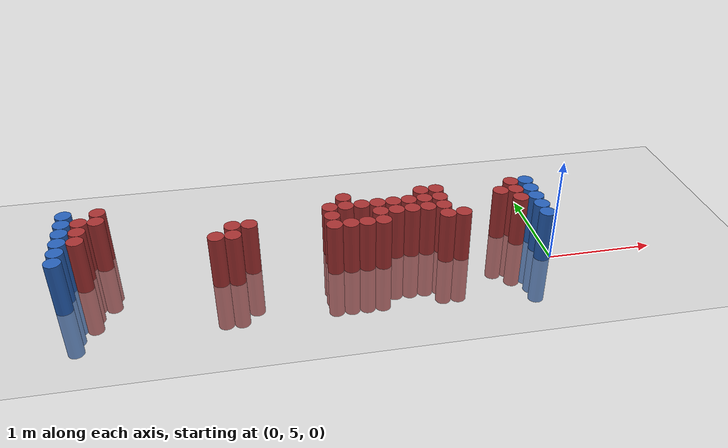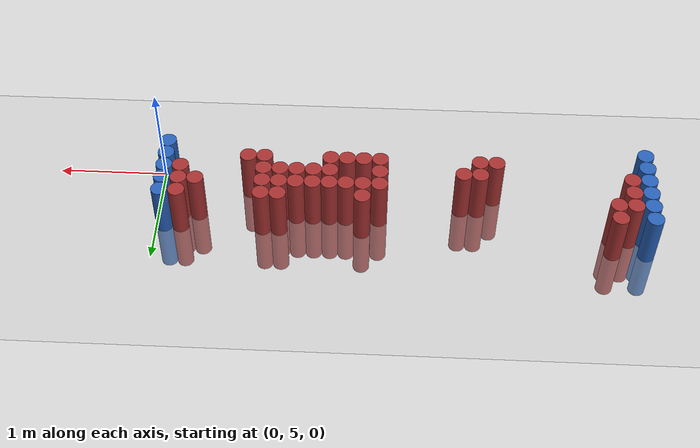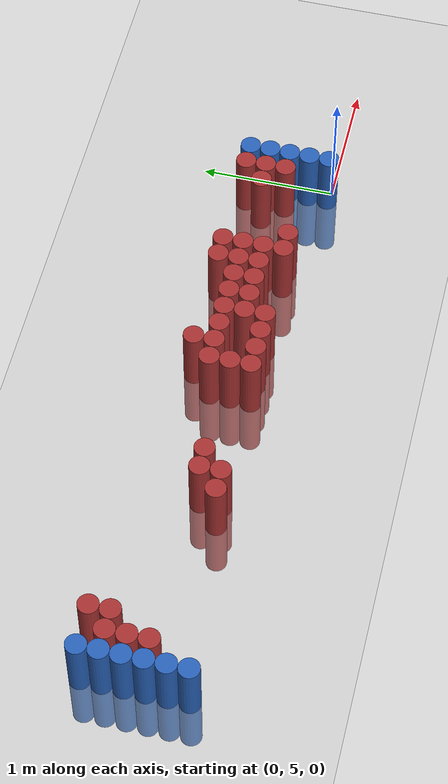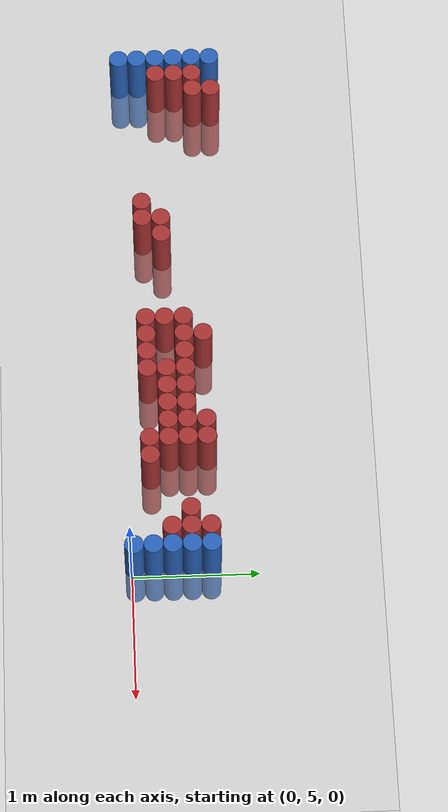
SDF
<sdf version="1.6">
 <world name="default">
  <model name="ground_plane">
   <static>1</static>
   <link name="link">
    <collision name="collision">
     <geometry><plane><normal>0 0 1</normal><size>100 100</size></plane></geometry>
     <surface><friction><ode><mu>100</mu><mu2>50</mu2></ode></friction></surface>
    </collision>
    <visual name="visual">
     <cast_shadows>0</cast_shadows>
     <geometry><plane><normal>0 0 1</normal><size>100 100</size></plane></geometry>
     <material>
      <script><uri>file://media/materials/scripts/gazebo.material</uri><name>Gazebo/Grey</name></script>
     </material>
    </visual>
   </link>
  </model>
  <model name="unit_cylinder_94">
   <static>1</static>
   <pose>-0.075000 5.025000 0.000000 0.000000 0.000000 0.000000</pose>
   <link name="link">
    <inertial>
     <mass>1</mass>
     <inertia><ixx>0.145833</ixx><ixy>0</ixy><ixz>0</ixz><iyy>0.145833</iyy><iyz>0</iyz><izz>0.125</izz></inertia>
    </inertial>
    <collision name="collision">
     <geometry><cylinder><radius>0.075000</radius><length>1</length></cylinder></geometry>
    </collision>
    <visual name="visual">
     <geometry><cylinder><radius>0.075000</radius><length>1</length></cylinder></geometry>
     <material>
      <ambient>0.152000 0.379000 0.720000 1</ambient>
      <diffuse>0.152000 0.379000 0.720000 1</diffuse>
     </material>
     <material>
      <script><name>Gazebo/Grey</name><uri>file://media/materials/scripts/gazebo.material</uri></script>
     </material>
    </visual>
   </link>
  </model>
  <model name="unit_cylinder_95">
   <static>1</static>
   <pose>-4.425000 5.025000 0.000000 0.000000 0.000000 0.000000</pose>
   <link name="link">
    <inertial>
     <mass>1</mass>
     <inertia><ixx>0.145833</ixx><ixy>0</ixy><ixz>0</ixz><iyy>0.145833</iyy><iyz>0</iyz><izz>0.125</izz></inertia>
    </inertial>
    <collision name="collision">
     <geometry><cylinder><radius>0.075000</radius><length>1</length></cylinder></geometry>
    </collision>
    <visual name="visual">
     <geometry><cylinder><radius>0.075000</radius><length>1</length></cylinder></geometry>
     <material>
      <ambient>0.152000 0.379000 0.720000 1</ambient>
      <diffuse>0.152000 0.379000 0.720000 1</diffuse>
     </material>
     <material>
      <script><name>Gazebo/Grey</name><uri>file://media/materials/scripts/gazebo.material</uri></script>
     </material>
    </visual>
   </link>
  </model>
  <model name="unit_cylinder_96">
   <static>1</static>
   <pose>-4.425000 5.175000 0.000000 0.000000 0.000000 0.000000</pose>
   <link name="link">
    <inertial>
     <mass>1</mass>
     <inertia><ixx>0.145833</ixx><ixy>0</ixy><ixz>0</ixz><iyy>0.145833</iyy><iyz>0</iyz><izz>0.125</izz></inertia>
    </inertial>
    <collision name="collision">
     <geometry><cylinder><radius>0.075000</radius><length>1</length></cylinder></geometry>
    </collision>
    <visual name="visual">
     <geometry><cylinder><radius>0.075000</radius><length>1</length></cylinder></geometry>
     <material>
      <ambient>0.152000 0.379000 0.720000 1</ambient>
      <diffuse>0.152000 0.379000 0.720000 1</diffuse>
     </material>
     <material>
      <script><name>Gazebo/Grey</name><uri>file://media/materials/scripts/gazebo.material</uri></script>
     </material>
    </visual>
   </link>
  </model>
  <model name="unit_cylinder_97">
   <static>1</static>
   <pose>-4.425000 5.325000 0.000000 0.000000 0.000000 0.000000</pose>
   <link name="link">
    <inertial>
     <mass>1</mass>
     <inertia><ixx>0.145833</ixx><ixy>0</ixy><ixz>0</ixz><iyy>0.145833</iyy><iyz>0</iyz><izz>0.125</izz></inertia>
    </inertial>
    <collision name="collision">
     <geometry><cylinder><radius>0.075000</radius><length>1</length></cylinder></geometry>
    </collision>
    <visual name="visual">
     <geometry><cylinder><radius>0.075000</radius><length>1</length></cylinder></geometry>
     <material>
      <ambient>0.152000 0.379000 0.720000 1</ambient>
      <diffuse>0.152000 0.379000 0.720000 1</diffuse>
     </material>
     <material>
      <script><name>Gazebo/Grey</name><uri>file://media/materials/scripts/gazebo.material</uri></script>
     </material>
    </visual>
   </link>
  </model>
  <model name="unit_cylinder_98">
   <static>1</static>
   <pose>-4.425000 5.475000 0.000000 0.000000 0.000000 0.000000</pose>
   <link name="link">
    <inertial>
     <mass>1</mass>
     <inertia><ixx>0.145833</ixx><ixy>0</ixy><ixz>0</ixz><iyy>0.145833</iyy><iyz>0</iyz><izz>0.125</izz></inertia>
    </inertial>
    <collision name="collision">
     <geometry><cylinder><radius>0.075000</radius><length>1</length></cylinder></geometry>
    </collision>
    <visual name="visual">
     <geometry><cylinder><radius>0.075000</radius><length>1</length></cylinder></geometry>
     <material>
      <ambient>0.152000 0.379000 0.720000 1</ambient>
      <diffuse>0.152000 0.379000 0.720000 1</diffuse>
     </material>
     <material>
      <script><name>Gazebo/Grey</name><uri>file://media/materials/scripts/gazebo.material</uri></script>
     </material>
    </visual>
   </link>
  </model>
  <model name="unit_cylinder_99">
   <static>1</static>
   <pose>-4.425000 5.625000 0.000000 0.000000 0.000000 0.000000</pose>
   <link name="link">
    <inertial>
     <mass>1</mass>
     <inertia><ixx>0.145833</ixx><ixy>0</ixy><ixz>0</ixz><iyy>0.145833</iyy><iyz>0</iyz><izz>0.125</izz></inertia>
    </inertial>
    <collision name="collision">
     <geometry><cylinder><radius>0.075000</radius><length>1</length></cylinder></geometry>
    </collision>
    <visual name="visual">
     <geometry><cylinder><radius>0.075000</radius><length>1</length></cylinder></geometry>
     <material>
      <ambient>0.152000 0.379000 0.720000 1</ambient>
      <diffuse>0.152000 0.379000 0.720000 1</diffuse>
     </material>
     <material>
      <script><name>Gazebo/Grey</name><uri>file://media/materials/scripts/gazebo.material</uri></script>
     </material>
    </visual>
   </link>
  </model>
  <model name="unit_cylinder_100">
   <static>1</static>
   <pose>-4.425000 5.775000 0.000000 0.000000 0.000000 0.000000</pose>
   <link name="link">
    <inertial>
     <mass>1</mass>
     <inertia><ixx>0.145833</ixx><ixy>0</ixy><ixz>0</ixz><iyy>0.145833</iyy><iyz>0</iyz><izz>0.125</izz></inertia>
    </inertial>
    <collision name="collision">
     <geometry><cylinder><radius>0.075000</radius><length>1</length></cylinder></geometry>
    </collision>
    <visual name="visual">
     <geometry><cylinder><radius>0.075000</radius><length>1</length></cylinder></geometry>
     <material>
      <ambient>0.152000 0.379000 0.720000 1</ambient>
      <diffuse>0.152000 0.379000 0.720000 1</diffuse>
     </material>
     <material>
      <script><name>Gazebo/Grey</name><uri>file://media/materials/scripts/gazebo.material</uri></script>
     </material>
    </visual>
   </link>
  </model>
  <model name="unit_cylinder_126">
   <static>1</static>
   <pose>-4.275000 5.325000 0.000000 0.000000 0.000000 0.000000</pose>
   <link name="link">
    <inertial>
     <mass>1</mass>
     <inertia><ixx>0.145833</ixx><ixy>0</ixy><ixz>0</ixz><iyy>0.145833</iyy><iyz>0</iyz><izz>0.125</izz></inertia>
    </inertial>
    <collision name="collision">
     <geometry><cylinder><radius>0.075000</radius><length>1</length></cylinder></geometry>
    </collision>
    <visual name="visual">
     <geometry><cylinder><radius>0.075000</radius><length>1</length></cylinder></geometry>
     <material>
      <ambient>0.648000 0.192000 0.192000 1</ambient>
      <diffuse>0.648000 0.192000 0.192000 1</diffuse>
     </material>
     <material>
      <script><name>Gazebo/Grey</name><uri>file://media/materials/scripts/gazebo.material</uri></script>
     </material>
    </visual>
   </link>
  </model>
  <model name="unit_cylinder_127">
   <static>1</static>
   <pose>-4.275000 5.475000 0.000000 0.000000 0.000000 0.000000</pose>
   <link name="link">
    <inertial>
     <mass>1</mass>
     <inertia><ixx>0.145833</ixx><ixy>0</ixy><ixz>0</ixz><iyy>0.145833</iyy><iyz>0</iyz><izz>0.125</izz></inertia>
    </inertial>
    <collision name="collision">
     <geometry><cylinder><radius>0.075000</radius><length>1</length></cylinder></geometry>
    </collision>
    <visual name="visual">
     <geometry><cylinder><radius>0.075000</radius><length>1</length></cylinder></geometry>
     <material>
      <ambient>0.648000 0.192000 0.192000 1</ambient>
      <diffuse>0.648000 0.192000 0.192000 1</diffuse>
     </material>
     <material>
      <script><name>Gazebo/Grey</name><uri>file://media/materials/scripts/gazebo.material</uri></script>
     </material>
    </visual>
   </link>
  </model>
  <model name="unit_cylinder_128">
   <static>1</static>
   <pose>-4.275000 5.625000 0.000000 0.000000 0.000000 0.000000</pose>
   <link name="link">
    <inertial>
     <mass>1</mass>
     <inertia><ixx>0.145833</ixx><ixy>0</ixy><ixz>0</ixz><iyy>0.145833</iyy><iyz>0</iyz><izz>0.125</izz></inertia>
    </inertial>
    <collision name="collision">
     <geometry><cylinder><radius>0.075000</radius><length>1</length></cylinder></geometry>
    </collision>
    <visual name="visual">
     <geometry><cylinder><radius>0.075000</radius><length>1</length></cylinder></geometry>
     <material>
      <ambient>0.648000 0.192000 0.192000 1</ambient>
      <diffuse>0.648000 0.192000 0.192000 1</diffuse>
     </material>
     <material>
      <script><name>Gazebo/Grey</name><uri>file://media/materials/scripts/gazebo.material</uri></script>
     </material>
    </visual>
   </link>
  </model>
  <model name="unit_cylinder_146">
   <static>1</static>
   <pose>-4.125000 5.625000 0.000000 0.000000 0.000000 0.000000</pose>
   <link name="link">
    <inertial>
     <mass>1</mass>
     <inertia><ixx>0.145833</ixx><ixy>0</ixy><ixz>0</ixz><iyy>0.145833</iyy><iyz>0</iyz><izz>0.125</izz></inertia>
    </inertial>
    <collision name="collision">
     <geometry><cylinder><radius>0.075000</radius><length>1</length></cylinder></geometry>
    </collision>
    <visual name="visual">
     <geometry><cylinder><radius>0.075000</radius><length>1</length></cylinder></geometry>
     <material>
      <ambient>0.648000 0.192000 0.192000 1</ambient>
      <diffuse>0.648000 0.192000 0.192000 1</diffuse>
     </material>
     <material>
      <script><name>Gazebo/Grey</name><uri>file://media/materials/scripts/gazebo.material</uri></script>
     </material>
    </visual>
   </link>
  </model>
  <model name="unit_cylinder_147">
   <static>1</static>
   <pose>-4.125000 5.775000 0.000000 0.000000 0.000000 0.000000</pose>
   <link name="link">
    <inertial>
     <mass>1</mass>
     <inertia><ixx>0.145833</ixx><ixy>0</ixy><ixz>0</ixz><iyy>0.145833</iyy><iyz>0</iyz><izz>0.125</izz></inertia>
    </inertial>
    <collision name="collision">
     <geometry><cylinder><radius>0.075000</radius><length>1</length></cylinder></geometry>
    </collision>
    <visual name="visual">
     <geometry><cylinder><radius>0.075000</radius><length>1</length></cylinder></geometry>
     <material>
      <ambient>0.648000 0.192000 0.192000 1</ambient>
      <diffuse>0.648000 0.192000 0.192000 1</diffuse>
     </material>
     <material>
      <script><name>Gazebo/Grey</name><uri>file://media/materials/scripts/gazebo.material</uri></script>
     </material>
    </visual>
   </link>
  </model>
  <model name="unit_cylinder_166">
   <static>1</static>
   <pose>-3.075000 5.175000 0.000000 0.000000 0.000000 0.000000</pose>
   <link name="link">
    <inertial>
     <mass>1</mass>
     <inertia><ixx>0.145833</ixx><ixy>0</ixy><ixz>0</ixz><iyy>0.145833</iyy><iyz>0</iyz><izz>0.125</izz></inertia>
    </inertial>
    <collision name="collision">
     <geometry><cylinder><radius>0.075000</radius><length>1</length></cylinder></geometry>
    </collision>
    <visual name="visual">
     <geometry><cylinder><radius>0.075000</radius><length>1</length></cylinder></geometry>
     <material>
      <ambient>0.648000 0.192000 0.192000 1</ambient>
      <diffuse>0.648000 0.192000 0.192000 1</diffuse>
     </material>
     <material>
      <script><name>Gazebo/Grey</name><uri>file://media/materials/scripts/gazebo.material</uri></script>
     </material>
    </visual>
   </link>
  </model>
  <model name="unit_cylinder_167">
   <static>1</static>
   <pose>-2.925000 5.175000 0.000000 0.000000 0.000000 0.000000</pose>
   <link name="link">
    <inertial>
     <mass>1</mass>
     <inertia><ixx>0.145833</ixx><ixy>0</ixy><ixz>0</ixz><iyy>0.145833</iyy><iyz>0</iyz><izz>0.125</izz></inertia>
    </inertial>
    <collision name="collision">
     <geometry><cylinder><radius>0.075000</radius><length>1</length></cylinder></geometry>
    </collision>
    <visual name="visual">
     <geometry><cylinder><radius>0.075000</radius><length>1</length></cylinder></geometry>
     <material>
      <ambient>0.648000 0.192000 0.192000 1</ambient>
      <diffuse>0.648000 0.192000 0.192000 1</diffuse>
     </material>
     <material>
      <script><name>Gazebo/Grey</name><uri>file://media/materials/scripts/gazebo.material</uri></script>
     </material>
    </visual>
   </link>
  </model>
  <model name="unit_cylinder_168">
   <static>1</static>
   <pose>-2.925000 5.325000 0.000000 0.000000 0.000000 0.000000</pose>
   <link name="link">
    <inertial>
     <mass>1</mass>
     <inertia><ixx>0.145833</ixx><ixy>0</ixy><ixz>0</ixz><iyy>0.145833</iyy><iyz>0</iyz><izz>0.125</izz></inertia>
    </inertial>
    <collision name="collision">
     <geometry><cylinder><radius>0.075000</radius><length>1</length></cylinder></geometry>
    </collision>
    <visual name="visual">
     <geometry><cylinder><radius>0.075000</radius><length>1</length></cylinder></geometry>
     <material>
      <ambient>0.648000 0.192000 0.192000 1</ambient>
      <diffuse>0.648000 0.192000 0.192000 1</diffuse>
     </material>
     <material>
      <script><name>Gazebo/Grey</name><uri>file://media/materials/scripts/gazebo.material</uri></script>
     </material>
    </visual>
   </link>
  </model>
  <model name="unit_cylinder_170">
   <static>1</static>
   <pose>-2.775000 5.325000 0.000000 0.000000 0.000000 0.000000</pose>
   <link name="link">
    <inertial>
     <mass>1</mass>
     <inertia><ixx>0.145833</ixx><ixy>0</ixy><ixz>0</ixz><iyy>0.145833</iyy><iyz>0</iyz><izz>0.125</izz></inertia>
    </inertial>
    <collision name="collision">
     <geometry><cylinder><radius>0.075000</radius><length>1</length></cylinder></geometry>
    </collision>
    <visual name="visual">
     <geometry><cylinder><radius>0.075000</radius><length>1</length></cylinder></geometry>
     <material>
      <ambient>0.648000 0.192000 0.192000 1</ambient>
      <diffuse>0.648000 0.192000 0.192000 1</diffuse>
     </material>
     <material>
      <script><name>Gazebo/Grey</name><uri>file://media/materials/scripts/gazebo.material</uri></script>
     </material>
    </visual>
   </link>
  </model>
  <model name="unit_cylinder_183">
   <static>1</static>
   <pose>-2.025000 5.175000 0.000000 0.000000 0.000000 0.000000</pose>
   <link name="link">
    <inertial>
     <mass>1</mass>
     <inertia><ixx>0.145833</ixx><ixy>0</ixy><ixz>0</ixz><iyy>0.145833</iyy><iyz>0</iyz><izz>0.125</izz></inertia>
    </inertial>
    <collision name="collision">
     <geometry><cylinder><radius>0.075000</radius><length>1</length></cylinder></geometry>
    </collision>
    <visual name="visual">
     <geometry><cylinder><radius>0.075000</radius><length>1</length></cylinder></geometry>
     <material>
      <ambient>0.648000 0.192000 0.192000 1</ambient>
      <diffuse>0.648000 0.192000 0.192000 1</diffuse>
     </material>
     <material>
      <script><name>Gazebo/Grey</name><uri>file://media/materials/scripts/gazebo.material</uri></script>
     </material>
    </visual>
   </link>
  </model>
  <model name="unit_cylinder_184">
   <static>1</static>
   <pose>-2.025000 5.325000 0.000000 0.000000 0.000000 0.000000</pose>
   <link name="link">
    <inertial>
     <mass>1</mass>
     <inertia><ixx>0.145833</ixx><ixy>0</ixy><ixz>0</ixz><iyy>0.145833</iyy><iyz>0</iyz><izz>0.125</izz></inertia>
    </inertial>
    <collision name="collision">
     <geometry><cylinder><radius>0.075000</radius><length>1</length></cylinder></geometry>
    </collision>
    <visual name="visual">
     <geometry><cylinder><radius>0.075000</radius><length>1</length></cylinder></geometry>
     <material>
      <ambient>0.648000 0.192000 0.192000 1</ambient>
      <diffuse>0.648000 0.192000 0.192000 1</diffuse>
     </material>
     <material>
      <script><name>Gazebo/Grey</name><uri>file://media/materials/scripts/gazebo.material</uri></script>
     </material>
    </visual>
   </link>
  </model>
  <model name="unit_cylinder_185">
   <static>1</static>
   <pose>-2.025000 5.475000 0.000000 0.000000 0.000000 0.000000</pose>
   <link name="link">
    <inertial>
     <mass>1</mass>
     <inertia><ixx>0.145833</ixx><ixy>0</ixy><ixz>0</ixz><iyy>0.145833</iyy><iyz>0</iyz><izz>0.125</izz></inertia>
    </inertial>
    <collision name="collision">
     <geometry><cylinder><radius>0.075000</radius><length>1</length></cylinder></geometry>
    </collision>
    <visual name="visual">
     <geometry><cylinder><radius>0.075000</radius><length>1</length></cylinder></geometry>
     <material>
      <ambient>0.648000 0.192000 0.192000 1</ambient>
      <diffuse>0.648000 0.192000 0.192000 1</diffuse>
     </material>
     <material>
      <script><name>Gazebo/Grey</name><uri>file://media/materials/scripts/gazebo.material</uri></script>
     </material>
    </visual>
   </link>
  </model>
  <model name="unit_cylinder_186">
   <static>1</static>
   <pose>-1.875000 5.175000 0.000000 0.000000 0.000000 0.000000</pose>
   <link name="link">
    <inertial>
     <mass>1</mass>
     <inertia><ixx>0.145833</ixx><ixy>0</ixy><ixz>0</ixz><iyy>0.145833</iyy><iyz>0</iyz><izz>0.125</izz></inertia>
    </inertial>
    <collision name="collision">
     <geometry><cylinder><radius>0.075000</radius><length>1</length></cylinder></geometry>
    </collision>
    <visual name="visual">
     <geometry><cylinder><radius>0.075000</radius><length>1</length></cylinder></geometry>
     <material>
      <ambient>0.648000 0.192000 0.192000 1</ambient>
      <diffuse>0.648000 0.192000 0.192000 1</diffuse>
     </material>
     <material>
      <script><name>Gazebo/Grey</name><uri>file://media/materials/scripts/gazebo.material</uri></script>
     </material>
    </visual>
   </link>
  </model>
  <model name="unit_cylinder_187">
   <static>1</static>
   <pose>-1.875000 5.475000 0.000000 0.000000 0.000000 0.000000</pose>
   <link name="link">
    <inertial>
     <mass>1</mass>
     <inertia><ixx>0.145833</ixx><ixy>0</ixy><ixz>0</ixz><iyy>0.145833</iyy><iyz>0</iyz><izz>0.125</izz></inertia>
    </inertial>
    <collision name="collision">
     <geometry><cylinder><radius>0.075000</radius><length>1</length></cylinder></geometry>
    </collision>
    <visual name="visual">
     <geometry><cylinder><radius>0.075000</radius><length>1</length></cylinder></geometry>
     <material>
      <ambient>0.648000 0.192000 0.192000 1</ambient>
      <diffuse>0.648000 0.192000 0.192000 1</diffuse>
     </material>
     <material>
      <script><name>Gazebo/Grey</name><uri>file://media/materials/scripts/gazebo.material</uri></script>
     </material>
    </visual>
   </link>
  </model>
  <model name="unit_cylinder_188">
   <static>1</static>
   <pose>-1.875000 5.625000 0.000000 0.000000 0.000000 0.000000</pose>
   <link name="link">
    <inertial>
     <mass>1</mass>
     <inertia><ixx>0.145833</ixx><ixy>0</ixy><ixz>0</ixz><iyy>0.145833</iyy><iyz>0</iyz><izz>0.125</izz></inertia>
    </inertial>
    <collision name="collision">
     <geometry><cylinder><radius>0.075000</radius><length>1</length></cylinder></geometry>
    </collision>
    <visual name="visual">
     <geometry><cylinder><radius>0.075000</radius><length>1</length></cylinder></geometry>
     <material>
      <ambient>0.648000 0.192000 0.192000 1</ambient>
      <diffuse>0.648000 0.192000 0.192000 1</diffuse>
     </material>
     <material>
      <script><name>Gazebo/Grey</name><uri>file://media/materials/scripts/gazebo.material</uri></script>
     </material>
    </visual>
   </link>
  </model>
  <model name="unit_cylinder_193">
   <static>1</static>
   <pose>-1.725000 5.175000 0.000000 0.000000 0.000000 0.000000</pose>
   <link name="link">
    <inertial>
     <mass>1</mass>
     <inertia><ixx>0.145833</ixx><ixy>0</ixy><ixz>0</ixz><iyy>0.145833</iyy><iyz>0</iyz><izz>0.125</izz></inertia>
    </inertial>
    <collision name="collision">
     <geometry><cylinder><radius>0.075000</radius><length>1</length></cylinder></geometry>
    </collision>
    <visual name="visual">
     <geometry><cylinder><radius>0.075000</radius><length>1</length></cylinder></geometry>
     <material>
      <ambient>0.648000 0.192000 0.192000 1</ambient>
      <diffuse>0.648000 0.192000 0.192000 1</diffuse>
     </material>
     <material>
      <script><name>Gazebo/Grey</name><uri>file://media/materials/scripts/gazebo.material</uri></script>
     </material>
    </visual>
   </link>
  </model>
  <model name="unit_cylinder_194">
   <static>1</static>
   <pose>-1.725000 5.475000 0.000000 0.000000 0.000000 0.000000</pose>
   <link name="link">
    <inertial>
     <mass>1</mass>
     <inertia><ixx>0.145833</ixx><ixy>0</ixy><ixz>0</ixz><iyy>0.145833</iyy><iyz>0</iyz><izz>0.125</izz></inertia>
    </inertial>
    <collision name="collision">
     <geometry><cylinder><radius>0.075000</radius><length>1</length></cylinder></geometry>
    </collision>
    <visual name="visual">
     <geometry><cylinder><radius>0.075000</radius><length>1</length></cylinder></geometry>
     <material>
      <ambient>0.648000 0.192000 0.192000 1</ambient>
      <diffuse>0.648000 0.192000 0.192000 1</diffuse>
     </material>
     <material>
      <script><name>Gazebo/Grey</name><uri>file://media/materials/scripts/gazebo.material</uri></script>
     </material>
    </visual>
   </link>
  </model>
  <model name="unit_cylinder_202">
   <static>1</static>
   <pose>-1.575000 5.175000 0.000000 0.000000 0.000000 0.000000</pose>
   <link name="link">
    <inertial>
     <mass>1</mass>
     <inertia><ixx>0.145833</ixx><ixy>0</ixy><ixz>0</ixz><iyy>0.145833</iyy><iyz>0</iyz><izz>0.125</izz></inertia>
    </inertial>
    <collision name="collision">
     <geometry><cylinder><radius>0.075000</radius><length>1</length></cylinder></geometry>
    </collision>
    <visual name="visual">
     <geometry><cylinder><radius>0.075000</radius><length>1</length></cylinder></geometry>
     <material>
      <ambient>0.648000 0.192000 0.192000 1</ambient>
      <diffuse>0.648000 0.192000 0.192000 1</diffuse>
     </material>
     <material>
      <script><name>Gazebo/Grey</name><uri>file://media/materials/scripts/gazebo.material</uri></script>
     </material>
    </visual>
   </link>
  </model>
  <model name="unit_cylinder_203">
   <static>1</static>
   <pose>-1.575000 5.325000 0.000000 0.000000 0.000000 0.000000</pose>
   <link name="link">
    <inertial>
     <mass>1</mass>
     <inertia><ixx>0.145833</ixx><ixy>0</ixy><ixz>0</ixz><iyy>0.145833</iyy><iyz>0</iyz><izz>0.125</izz></inertia>
    </inertial>
    <collision name="collision">
     <geometry><cylinder><radius>0.075000</radius><length>1</length></cylinder></geometry>
    </collision>
    <visual name="visual">
     <geometry><cylinder><radius>0.075000</radius><length>1</length></cylinder></geometry>
     <material>
      <ambient>0.648000 0.192000 0.192000 1</ambient>
      <diffuse>0.648000 0.192000 0.192000 1</diffuse>
     </material>
     <material>
      <script><name>Gazebo/Grey</name><uri>file://media/materials/scripts/gazebo.material</uri></script>
     </material>
    </visual>
   </link>
  </model>
  <model name="unit_cylinder_204">
   <static>1</static>
   <pose>-1.575000 5.475000 0.000000 0.000000 0.000000 0.000000</pose>
   <link name="link">
    <inertial>
     <mass>1</mass>
     <inertia><ixx>0.145833</ixx><ixy>0</ixy><ixz>0</ixz><iyy>0.145833</iyy><iyz>0</iyz><izz>0.125</izz></inertia>
    </inertial>
    <collision name="collision">
     <geometry><cylinder><radius>0.075000</radius><length>1</length></cylinder></geometry>
    </collision>
    <visual name="visual">
     <geometry><cylinder><radius>0.075000</radius><length>1</length></cylinder></geometry>
     <material>
      <ambient>0.648000 0.192000 0.192000 1</ambient>
      <diffuse>0.648000 0.192000 0.192000 1</diffuse>
     </material>
     <material>
      <script><name>Gazebo/Grey</name><uri>file://media/materials/scripts/gazebo.material</uri></script>
     </material>
    </visual>
   </link>
  </model>
  <model name="unit_cylinder_213">
   <static>1</static>
   <pose>-1.425000 5.325000 0.000000 0.000000 0.000000 0.000000</pose>
   <link name="link">
    <inertial>
     <mass>1</mass>
     <inertia><ixx>0.145833</ixx><ixy>0</ixy><ixz>0</ixz><iyy>0.145833</iyy><iyz>0</iyz><izz>0.125</izz></inertia>
    </inertial>
    <collision name="collision">
     <geometry><cylinder><radius>0.075000</radius><length>1</length></cylinder></geometry>
    </collision>
    <visual name="visual">
     <geometry><cylinder><radius>0.075000</radius><length>1</length></cylinder></geometry>
     <material>
      <ambient>0.648000 0.192000 0.192000 1</ambient>
      <diffuse>0.648000 0.192000 0.192000 1</diffuse>
     </material>
     <material>
      <script><name>Gazebo/Grey</name><uri>file://media/materials/scripts/gazebo.material</uri></script>
     </material>
    </visual>
   </link>
  </model>
  <model name="unit_cylinder_214">
   <static>1</static>
   <pose>-1.425000 5.475000 0.000000 0.000000 0.000000 0.000000</pose>
   <link name="link">
    <inertial>
     <mass>1</mass>
     <inertia><ixx>0.145833</ixx><ixy>0</ixy><ixz>0</ixz><iyy>0.145833</iyy><iyz>0</iyz><izz>0.125</izz></inertia>
    </inertial>
    <collision name="collision">
     <geometry><cylinder><radius>0.075000</radius><length>1</length></cylinder></geometry>
    </collision>
    <visual name="visual">
     <geometry><cylinder><radius>0.075000</radius><length>1</length></cylinder></geometry>
     <material>
      <ambient>0.648000 0.192000 0.192000 1</ambient>
      <diffuse>0.648000 0.192000 0.192000 1</diffuse>
     </material>
     <material>
      <script><name>Gazebo/Grey</name><uri>file://media/materials/scripts/gazebo.material</uri></script>
     </material>
    </visual>
   </link>
  </model>
  <model name="unit_cylinder_222">
   <static>1</static>
   <pose>-1.275000 5.325000 0.000000 0.000000 0.000000 0.000000</pose>
   <link name="link">
    <inertial>
     <mass>1</mass>
     <inertia><ixx>0.145833</ixx><ixy>0</ixy><ixz>0</ixz><iyy>0.145833</iyy><iyz>0</iyz><izz>0.125</izz></inertia>
    </inertial>
    <collision name="collision">
     <geometry><cylinder><radius>0.075000</radius><length>1</length></cylinder></geometry>
    </collision>
    <visual name="visual">
     <geometry><cylinder><radius>0.075000</radius><length>1</length></cylinder></geometry>
     <material>
      <ambient>0.648000 0.192000 0.192000 1</ambient>
      <diffuse>0.648000 0.192000 0.192000 1</diffuse>
     </material>
     <material>
      <script><name>Gazebo/Grey</name><uri>file://media/materials/scripts/gazebo.material</uri></script>
     </material>
    </visual>
   </link>
  </model>
  <model name="unit_cylinder_223">
   <static>1</static>
   <pose>-1.275000 5.475000 0.000000 0.000000 0.000000 0.000000</pose>
   <link name="link">
    <inertial>
     <mass>1</mass>
     <inertia><ixx>0.145833</ixx><ixy>0</ixy><ixz>0</ixz><iyy>0.145833</iyy><iyz>0</iyz><izz>0.125</izz></inertia>
    </inertial>
    <collision name="collision">
     <geometry><cylinder><radius>0.075000</radius><length>1</length></cylinder></geometry>
    </collision>
    <visual name="visual">
     <geometry><cylinder><radius>0.075000</radius><length>1</length></cylinder></geometry>
     <material>
      <ambient>0.648000 0.192000 0.192000 1</ambient>
      <diffuse>0.648000 0.192000 0.192000 1</diffuse>
     </material>
     <material>
      <script><name>Gazebo/Grey</name><uri>file://media/materials/scripts/gazebo.material</uri></script>
     </material>
    </visual>
   </link>
  </model>
  <model name="unit_cylinder_229">
   <static>1</static>
   <pose>-1.125000 5.325000 0.000000 0.000000 0.000000 0.000000</pose>
   <link name="link">
    <inertial>
     <mass>1</mass>
     <inertia><ixx>0.145833</ixx><ixy>0</ixy><ixz>0</ixz><iyy>0.145833</iyy><iyz>0</iyz><izz>0.125</izz></inertia>
    </inertial>
    <collision name="collision">
     <geometry><cylinder><radius>0.075000</radius><length>1</length></cylinder></geometry>
    </collision>
    <visual name="visual">
     <geometry><cylinder><radius>0.075000</radius><length>1</length></cylinder></geometry>
     <material>
      <ambient>0.648000 0.192000 0.192000 1</ambient>
      <diffuse>0.648000 0.192000 0.192000 1</diffuse>
     </material>
     <material>
      <script><name>Gazebo/Grey</name><uri>file://media/materials/scripts/gazebo.material</uri></script>
     </material>
    </visual>
   </link>
  </model>
  <model name="unit_cylinder_230">
   <static>1</static>
   <pose>-1.125000 5.475000 0.000000 0.000000 0.000000 0.000000</pose>
   <link name="link">
    <inertial>
     <mass>1</mass>
     <inertia><ixx>0.145833</ixx><ixy>0</ixy><ixz>0</ixz><iyy>0.145833</iyy><iyz>0</iyz><izz>0.125</izz></inertia>
    </inertial>
    <collision name="collision">
     <geometry><cylinder><radius>0.075000</radius><length>1</length></cylinder></geometry>
    </collision>
    <visual name="visual">
     <geometry><cylinder><radius>0.075000</radius><length>1</length></cylinder></geometry>
     <material>
      <ambient>0.648000 0.192000 0.192000 1</ambient>
      <diffuse>0.648000 0.192000 0.192000 1</diffuse>
     </material>
     <material>
      <script><name>Gazebo/Grey</name><uri>file://media/materials/scripts/gazebo.material</uri></script>
     </material>
    </visual>
   </link>
  </model>
  <model name="unit_cylinder_231">
   <static>1</static>
   <pose>-1.125000 5.625000 0.000000 0.000000 0.000000 0.000000</pose>
   <link name="link">
    <inertial>
     <mass>1</mass>
     <inertia><ixx>0.145833</ixx><ixy>0</ixy><ixz>0</ixz><iyy>0.145833</iyy><iyz>0</iyz><izz>0.125</izz></inertia>
    </inertial>
    <collision name="collision">
     <geometry><cylinder><radius>0.075000</radius><length>1</length></cylinder></geometry>
    </collision>
    <visual name="visual">
     <geometry><cylinder><radius>0.075000</radius><length>1</length></cylinder></geometry>
     <material>
      <ambient>0.648000 0.192000 0.192000 1</ambient>
      <diffuse>0.648000 0.192000 0.192000 1</diffuse>
     </material>
     <material>
      <script><name>Gazebo/Grey</name><uri>file://media/materials/scripts/gazebo.material</uri></script>
     </material>
    </visual>
   </link>
  </model>
  <model name="unit_cylinder_237">
   <static>1</static>
   <pose>-0.975000 5.175000 0.000000 0.000000 0.000000 0.000000</pose>
   <link name="link">
    <inertial>
     <mass>1</mass>
     <inertia><ixx>0.145833</ixx><ixy>0</ixy><ixz>0</ixz><iyy>0.145833</iyy><iyz>0</iyz><izz>0.125</izz></inertia>
    </inertial>
    <collision name="collision">
     <geometry><cylinder><radius>0.075000</radius><length>1</length></cylinder></geometry>
    </collision>
    <visual name="visual">
     <geometry><cylinder><radius>0.075000</radius><length>1</length></cylinder></geometry>
     <material>
      <ambient>0.648000 0.192000 0.192000 1</ambient>
      <diffuse>0.648000 0.192000 0.192000 1</diffuse>
     </material>
     <material>
      <script><name>Gazebo/Grey</name><uri>file://media/materials/scripts/gazebo.material</uri></script>
     </material>
    </visual>
   </link>
  </model>
  <model name="unit_cylinder_238">
   <static>1</static>
   <pose>-0.975000 5.325000 0.000000 0.000000 0.000000 0.000000</pose>
   <link name="link">
    <inertial>
     <mass>1</mass>
     <inertia><ixx>0.145833</ixx><ixy>0</ixy><ixz>0</ixz><iyy>0.145833</iyy><iyz>0</iyz><izz>0.125</izz></inertia>
    </inertial>
    <collision name="collision">
     <geometry><cylinder><radius>0.075000</radius><length>1</length></cylinder></geometry>
    </collision>
    <visual name="visual">
     <geometry><cylinder><radius>0.075000</radius><length>1</length></cylinder></geometry>
     <material>
      <ambient>0.648000 0.192000 0.192000 1</ambient>
      <diffuse>0.648000 0.192000 0.192000 1</diffuse>
     </material>
     <material>
      <script><name>Gazebo/Grey</name><uri>file://media/materials/scripts/gazebo.material</uri></script>
     </material>
    </visual>
   </link>
  </model>
  <model name="unit_cylinder_239">
   <static>1</static>
   <pose>-0.975000 5.475000 0.000000 0.000000 0.000000 0.000000</pose>
   <link name="link">
    <inertial>
     <mass>1</mass>
     <inertia><ixx>0.145833</ixx><ixy>0</ixy><ixz>0</ixz><iyy>0.145833</iyy><iyz>0</iyz><izz>0.125</izz></inertia>
    </inertial>
    <collision name="collision">
     <geometry><cylinder><radius>0.075000</radius><length>1</length></cylinder></geometry>
    </collision>
    <visual name="visual">
     <geometry><cylinder><radius>0.075000</radius><length>1</length></cylinder></geometry>
     <material>
      <ambient>0.648000 0.192000 0.192000 1</ambient>
      <diffuse>0.648000 0.192000 0.192000 1</diffuse>
     </material>
     <material>
      <script><name>Gazebo/Grey</name><uri>file://media/materials/scripts/gazebo.material</uri></script>
     </material>
    </visual>
   </link>
  </model>
  <model name="unit_cylinder_240">
   <static>1</static>
   <pose>-0.975000 5.625000 0.000000 0.000000 0.000000 0.000000</pose>
   <link name="link">
    <inertial>
     <mass>1</mass>
     <inertia><ixx>0.145833</ixx><ixy>0</ixy><ixz>0</ixz><iyy>0.145833</iyy><iyz>0</iyz><izz>0.125</izz></inertia>
    </inertial>
    <collision name="collision">
     <geometry><cylinder><radius>0.075000</radius><length>1</length></cylinder></geometry>
    </collision>
    <visual name="visual">
     <geometry><cylinder><radius>0.075000</radius><length>1</length></cylinder></geometry>
     <material>
      <ambient>0.648000 0.192000 0.192000 1</ambient>
      <diffuse>0.648000 0.192000 0.192000 1</diffuse>
     </material>
     <material>
      <script><name>Gazebo/Grey</name><uri>file://media/materials/scripts/gazebo.material</uri></script>
     </material>
    </visual>
   </link>
  </model>
  <model name="unit_cylinder_247">
   <static>1</static>
   <pose>-0.825000 5.175000 0.000000 0.000000 0.000000 0.000000</pose>
   <link name="link">
    <inertial>
     <mass>1</mass>
     <inertia><ixx>0.145833</ixx><ixy>0</ixy><ixz>0</ixz><iyy>0.145833</iyy><iyz>0</iyz><izz>0.125</izz></inertia>
    </inertial>
    <collision name="collision">
     <geometry><cylinder><radius>0.075000</radius><length>1</length></cylinder></geometry>
    </collision>
    <visual name="visual">
     <geometry><cylinder><radius>0.075000</radius><length>1</length></cylinder></geometry>
     <material>
      <ambient>0.648000 0.192000 0.192000 1</ambient>
      <diffuse>0.648000 0.192000 0.192000 1</diffuse>
     </material>
     <material>
      <script><name>Gazebo/Grey</name><uri>file://media/materials/scripts/gazebo.material</uri></script>
     </material>
    </visual>
   </link>
  </model>
  <model name="unit_cylinder_277">
   <static>1</static>
   <pose>-0.375000 5.475000 0.000000 0.000000 0.000000 0.000000</pose>
   <link name="link">
    <inertial>
     <mass>1</mass>
     <inertia><ixx>0.145833</ixx><ixy>0</ixy><ixz>0</ixz><iyy>0.145833</iyy><iyz>0</iyz><izz>0.125</izz></inertia>
    </inertial>
    <collision name="collision">
     <geometry><cylinder><radius>0.075000</radius><length>1</length></cylinder></geometry>
    </collision>
    <visual name="visual">
     <geometry><cylinder><radius>0.075000</radius><length>1</length></cylinder></geometry>
     <material>
      <ambient>0.648000 0.192000 0.192000 1</ambient>
      <diffuse>0.648000 0.192000 0.192000 1</diffuse>
     </material>
     <material>
      <script><name>Gazebo/Grey</name><uri>file://media/materials/scripts/gazebo.material</uri></script>
     </material>
    </visual>
   </link>
  </model>
  <model name="unit_cylinder_285">
   <static>1</static>
   <pose>-0.225000 5.325000 0.000000 0.000000 0.000000 0.000000</pose>
   <link name="link">
    <inertial>
     <mass>1</mass>
     <inertia><ixx>0.145833</ixx><ixy>0</ixy><ixz>0</ixz><iyy>0.145833</iyy><iyz>0</iyz><izz>0.125</izz></inertia>
    </inertial>
    <collision name="collision">
     <geometry><cylinder><radius>0.075000</radius><length>1</length></cylinder></geometry>
    </collision>
    <visual name="visual">
     <geometry><cylinder><radius>0.075000</radius><length>1</length></cylinder></geometry>
     <material>
      <ambient>0.648000 0.192000 0.192000 1</ambient>
      <diffuse>0.648000 0.192000 0.192000 1</diffuse>
     </material>
     <material>
      <script><name>Gazebo/Grey</name><uri>file://media/materials/scripts/gazebo.material</uri></script>
     </material>
    </visual>
   </link>
  </model>
  <model name="unit_cylinder_286">
   <static>1</static>
   <pose>-0.225000 5.475000 0.000000 0.000000 0.000000 0.000000</pose>
   <link name="link">
    <inertial>
     <mass>1</mass>
     <inertia><ixx>0.145833</ixx><ixy>0</ixy><ixz>0</ixz><iyy>0.145833</iyy><iyz>0</iyz><izz>0.125</izz></inertia>
    </inertial>
    <collision name="collision">
     <geometry><cylinder><radius>0.075000</radius><length>1</length></cylinder></geometry>
    </collision>
    <visual name="visual">
     <geometry><cylinder><radius>0.075000</radius><length>1</length></cylinder></geometry>
     <material>
      <ambient>0.648000 0.192000 0.192000 1</ambient>
      <diffuse>0.648000 0.192000 0.192000 1</diffuse>
     </material>
     <material>
      <script><name>Gazebo/Grey</name><uri>file://media/materials/scripts/gazebo.material</uri></script>
     </material>
    </visual>
   </link>
  </model>
  <model name="unit_cylinder_287">
   <static>1</static>
   <pose>-0.225000 5.625000 0.000000 0.000000 0.000000 0.000000</pose>
   <link name="link">
    <inertial>
     <mass>1</mass>
     <inertia><ixx>0.145833</ixx><ixy>0</ixy><ixz>0</ixz><iyy>0.145833</iyy><iyz>0</iyz><izz>0.125</izz></inertia>
    </inertial>
    <collision name="collision">
     <geometry><cylinder><radius>0.075000</radius><length>1</length></cylinder></geometry>
    </collision>
    <visual name="visual">
     <geometry><cylinder><radius>0.075000</radius><length>1</length></cylinder></geometry>
     <material>
      <ambient>0.648000 0.192000 0.192000 1</ambient>
      <diffuse>0.648000 0.192000 0.192000 1</diffuse>
     </material>
     <material>
      <script><name>Gazebo/Grey</name><uri>file://media/materials/scripts/gazebo.material</uri></script>
     </material>
    </visual>
   </link>
  </model>
  <model name="unit_cylinder_300">
   <static>1</static>
   <pose>-0.075000 5.175000 0.000000 0.000000 0.000000 0.000000</pose>
   <link name="link">
    <inertial>
     <mass>1</mass>
     <inertia><ixx>0.145833</ixx><ixy>0</ixy><ixz>0</ixz><iyy>0.145833</iyy><iyz>0</iyz><izz>0.125</izz></inertia>
    </inertial>
    <collision name="collision">
     <geometry><cylinder><radius>0.075000</radius><length>1</length></cylinder></geometry>
    </collision>
    <visual name="visual">
     <geometry><cylinder><radius>0.075000</radius><length>1</length></cylinder></geometry>
     <material>
      <ambient>0.152000 0.379000 0.720000 1</ambient>
      <diffuse>0.152000 0.379000 0.720000 1</diffuse>
     </material>
     <material>
      <script><name>Gazebo/Grey</name><uri>file://media/materials/scripts/gazebo.material</uri></script>
     </material>
    </visual>
   </link>
  </model>
  <model name="unit_cylinder_301">
   <static>1</static>
   <pose>-0.075000 5.325000 0.000000 0.000000 0.000000 0.000000</pose>
   <link name="link">
    <inertial>
     <mass>1</mass>
     <inertia><ixx>0.145833</ixx><ixy>0</ixy><ixz>0</ixz><iyy>0.145833</iyy><iyz>0</iyz><izz>0.125</izz></inertia>
    </inertial>
    <collision name="collision">
     <geometry><cylinder><radius>0.075000</radius><length>1</length></cylinder></geometry>
    </collision>
    <visual name="visual">
     <geometry><cylinder><radius>0.075000</radius><length>1</length></cylinder></geometry>
     <material>
      <ambient>0.152000 0.379000 0.720000 1</ambient>
      <diffuse>0.152000 0.379000 0.720000 1</diffuse>
     </material>
     <material>
      <script><name>Gazebo/Grey</name><uri>file://media/materials/scripts/gazebo.material</uri></script>
     </material>
    </visual>
   </link>
  </model>
  <model name="unit_cylinder_302">
   <static>1</static>
   <pose>-0.075000 5.475000 0.000000 0.000000 0.000000 0.000000</pose>
   <link name="link">
    <inertial>
     <mass>1</mass>
     <inertia><ixx>0.145833</ixx><ixy>0</ixy><ixz>0</ixz><iyy>0.145833</iyy><iyz>0</iyz><izz>0.125</izz></inertia>
    </inertial>
    <collision name="collision">
     <geometry><cylinder><radius>0.075000</radius><length>1</length></cylinder></geometry>
    </collision>
    <visual name="visual">
     <geometry><cylinder><radius>0.075000</radius><length>1</length></cylinder></geometry>
     <material>
      <ambient>0.152000 0.379000 0.720000 1</ambient>
      <diffuse>0.152000 0.379000 0.720000 1</diffuse>
     </material>
     <material>
      <script><name>Gazebo/Grey</name><uri>file://media/materials/scripts/gazebo.material</uri></script>
     </material>
    </visual>
   </link>
  </model>
  <model name="unit_cylinder_303">
   <static>1</static>
   <pose>-0.075000 5.625000 0.000000 0.000000 0.000000 0.000000</pose>
   <link name="link">
    <inertial>
     <mass>1</mass>
     <inertia><ixx>0.145833</ixx><ixy>0</ixy><ixz>0</ixz><iyy>0.145833</iyy><iyz>0</iyz><izz>0.125</izz></inertia>
    </inertial>
    <collision name="collision">
     <geometry><cylinder><radius>0.075000</radius><length>1</length></cylinder></geometry>
    </collision>
    <visual name="visual">
     <geometry><cylinder><radius>0.075000</radius><length>1</length></cylinder></geometry>
     <material>
      <ambient>0.152000 0.379000 0.720000 1</ambient>
      <diffuse>0.152000 0.379000 0.720000 1</diffuse>
     </material>
     <material>
      <script><name>Gazebo/Grey</name><uri>file://media/materials/scripts/gazebo.material</uri></script>
     </material>
    </visual>
   </link>
  </model>
 </world>
</sdf>
